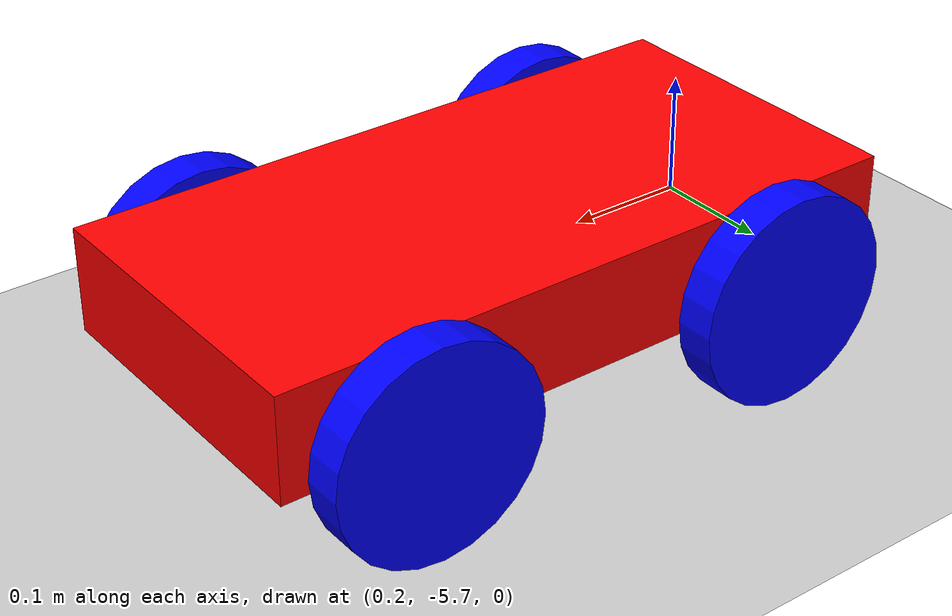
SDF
<sdf version="1.6">
 <world name="default">
  <model name="ground_plane">
   <static>1</static>
   <link name="link">
    <collision name="collision">
     <geometry><plane><normal>0 0 1</normal><size>100 100</size></plane></geometry>
     <surface><friction><ode><mu>100</mu><mu2>50</mu2></ode></friction></surface>
    </collision>
    <visual name="visual">
     <cast_shadows>0</cast_shadows>
     <geometry><plane><normal>0 0 1</normal><size>100 100</size></plane></geometry>
     <material>
      <script><uri>file://media/materials/scripts/gazebo.material</uri><name>Gazebo/Grey</name></script>
     </material>
    </visual>
   </link>
  </model>
  <model name="mybot_3">
   <link name="link_0">
    <pose>0 0 0.12 0 -0 0</pose>
    <inertial>
     <mass>1</mass>
     <inertia>
      <ixx>0.166667</ixx>
      <ixy>0</ixy>
      <ixz>0</ixz>
      <iyy>0.166667</iyy>
      <iyz>0</iyz>
      <izz>0.166667</izz>
     </inertia>
    </inertial>
    <visual name="visual">
     <geometry><box><size>0.5 0.25 0.08</size></box></geometry>
     <material>
      <lighting>1</lighting>
      <script><uri>file://media/materials/scripts/gazebo.material</uri><name>Gazebo/Grey</name></script>
      <shader type="pixel"><normal_map>__default__</normal_map></shader>
      <ambient>1 0 0 1</ambient>
      <diffuse>0.7 0.7 0.7 1</diffuse>
      <specular>0.01 0.01 0.01 1</specular>
      <emissive>0 0 0 1</emissive>
     </material>
    </visual>
    <collision name="collision">
     <geometry><box><size>0.5 0.25 0.08</size></box></geometry>
     <surface>
      <friction>
       <ode><mu>1</mu><mu2>1</mu2><fdir1>0 0 0</fdir1><slip1>0</slip1><slip2>0</slip2></ode>
       <torsional>
        <coefficient>1</coefficient>
        <patch_radius>0</patch_radius>
        <surface_radius>0</surface_radius>
        <use_patch_radius>1</use_patch_radius>
        <ode><slip>0</slip></ode>
       </torsional>
      </friction>
      <bounce><restitution_coefficient>0</restitution_coefficient><threshold>1e+06</threshold></bounce>
      <contact>
       <collide_without_contact>0</collide_without_contact>
       <collide_without_contact_bitmask>1</collide_without_contact_bitmask>
       <collide_bitmask>1</collide_bitmask>
       <ode>
        <soft_cfm>0</soft_cfm>
        <soft_erp>0.2</soft_erp>
        <kp>1e+13</kp>
        <kd>1</kd>
        <max_vel>0.01</max_vel>
        <min_depth>0</min_depth>
       </ode>
       <bullet>
        <split_impulse>1</split_impulse>
        <split_impulse_penetration_threshold>-0.01</split_impulse_penetration_threshold>
        <soft_cfm>0</soft_cfm>
        <soft_erp>0.2</soft_erp>
        <kp>1e+13</kp>
        <kd>1</kd>
       </bullet>
      </contact>
     </surface>
    </collision>
   </link>
   <link name="link_1_clone">
    <pose>0.15 0.14 0.09 1.571 -0 0</pose>
    <inertial>
     <mass>1</mass>
     <inertia><ixx>0.145833</ixx><ixy>0</ixy><ixz>0</ixz><iyy>0.145833</iyy><iyz>0</iyz><izz>0.125</izz></inertia>
    </inertial>
    <visual name="visual">
     <geometry><cylinder><radius>0.08</radius><length>0.03</length></cylinder></geometry>
     <material>
      <lighting>1</lighting>
      <script><uri>file://media/materials/scripts/gazebo.material</uri><name>Gazebo/Grey</name></script>
      <shader type="pixel"><normal_map>__default__</normal_map></shader>
      <ambient>0 0 1 1</ambient>
      <diffuse>0.7 0.7 0.7 1</diffuse>
      <specular>0.01 0.01 0.01 1</specular>
      <emissive>0 0 0 1</emissive>
     </material>
    </visual>
    <collision name="collision">
     <geometry><cylinder><radius>0.08</radius><length>0.03</length></cylinder></geometry>
     <surface>
      <friction>
       <ode><mu>1</mu><mu2>1</mu2><fdir1>0 0 0</fdir1><slip1>0</slip1><slip2>0</slip2></ode>
       <torsional>
        <coefficient>1</coefficient>
        <patch_radius>0</patch_radius>
        <surface_radius>0</surface_radius>
        <use_patch_radius>1</use_patch_radius>
        <ode><slip>0</slip></ode>
       </torsional>
      </friction>
      <bounce><restitution_coefficient>0</restitution_coefficient><threshold>1e+06</threshold></bounce>
      <contact>
       <collide_without_contact>0</collide_without_contact>
       <collide_without_contact_bitmask>1</collide_without_contact_bitmask>
       <collide_bitmask>1</collide_bitmask>
       <ode>
        <soft_cfm>0</soft_cfm>
        <soft_erp>0.2</soft_erp>
        <kp>1e+13</kp>
        <kd>1</kd>
        <max_vel>0.01</max_vel>
        <min_depth>0</min_depth>
       </ode>
       <bullet>
        <split_impulse>1</split_impulse>
        <split_impulse_penetration_threshold>-0.01</split_impulse_penetration_threshold>
        <soft_cfm>0</soft_cfm>
        <soft_erp>0.2</soft_erp>
        <kp>1e+13</kp>
        <kd>1</kd>
       </bullet>
      </contact>
     </surface>
    </collision>
   </link>
   <link name="link_1_clone_clone">
    <pose>-0.15 0.14 0.09 1.571 -0 0</pose>
    <inertial>
     <mass>1</mass>
     <inertia><ixx>0.145833</ixx><ixy>0</ixy><ixz>0</ixz><iyy>0.145833</iyy><iyz>0</iyz><izz>0.125</izz></inertia>
    </inertial>
    <visual name="visual">
     <geometry><cylinder><radius>0.08</radius><length>0.03</length></cylinder></geometry>
     <material>
      <lighting>1</lighting>
      <script><uri>file://media/materials/scripts/gazebo.material</uri><name>Gazebo/Grey</name></script>
      <shader type="pixel"><normal_map>__default__</normal_map></shader>
      <ambient>0 0 1 1</ambient>
      <diffuse>0.7 0.7 0.7 1</diffuse>
      <specular>0.01 0.01 0.01 1</specular>
      <emissive>0 0 0 1</emissive>
     </material>
    </visual>
    <collision name="collision">
     <geometry><cylinder><radius>0.08</radius><length>0.03</length></cylinder></geometry>
     <surface>
      <friction>
       <ode><mu>1</mu><mu2>1</mu2><fdir1>0 0 0</fdir1><slip1>0</slip1><slip2>0</slip2></ode>
       <torsional>
        <coefficient>1</coefficient>
        <patch_radius>0</patch_radius>
        <surface_radius>0</surface_radius>
        <use_patch_radius>1</use_patch_radius>
        <ode><slip>0</slip></ode>
       </torsional>
      </friction>
      <bounce><restitution_coefficient>0</restitution_coefficient><threshold>1e+06</threshold></bounce>
      <contact>
       <collide_without_contact>0</collide_without_contact>
       <collide_without_contact_bitmask>1</collide_without_contact_bitmask>
       <collide_bitmask>1</collide_bitmask>
       <ode>
        <soft_cfm>0</soft_cfm>
        <soft_erp>0.2</soft_erp>
        <kp>1e+13</kp>
        <kd>1</kd>
        <max_vel>0.01</max_vel>
        <min_depth>0</min_depth>
       </ode>
       <bullet>
        <split_impulse>1</split_impulse>
        <split_impulse_penetration_threshold>-0.01</split_impulse_penetration_threshold>
        <soft_cfm>0</soft_cfm>
        <soft_erp>0.2</soft_erp>
        <kp>1e+13</kp>
        <kd>1</kd>
       </bullet>
      </contact>
     </surface>
    </collision>
   </link>
   <link name="link_1_clone_clone_0">
    <pose>-0.15 -0.14 0.09 1.571 -0 0</pose>
    <inertial>
     <mass>1</mass>
     <inertia><ixx>0.145833</ixx><ixy>0</ixy><ixz>0</ixz><iyy>0.145833</iyy><iyz>0</iyz><izz>0.125</izz></inertia>
    </inertial>
    <visual name="visual">
     <geometry><cylinder><radius>0.08</radius><length>0.03</length></cylinder></geometry>
     <material>
      <lighting>1</lighting>
      <script><uri>file://media/materials/scripts/gazebo.material</uri><name>Gazebo/Grey</name></script>
      <shader type="pixel"><normal_map>__default__</normal_map></shader>
      <ambient>0 0 1 1</ambient>
      <diffuse>0.7 0.7 0.7 1</diffuse>
      <specular>0.01 0.01 0.01 1</specular>
      <emissive>0 0 0 1</emissive>
     </material>
    </visual>
    <collision name="collision">
     <geometry><cylinder><radius>0.08</radius><length>0.03</length></cylinder></geometry>
     <surface>
      <friction>
       <ode><mu>1</mu><mu2>1</mu2><fdir1>0 0 0</fdir1><slip1>0</slip1><slip2>0</slip2></ode>
       <torsional>
        <coefficient>1</coefficient>
        <patch_radius>0</patch_radius>
        <surface_radius>0</surface_radius>
        <use_patch_radius>1</use_patch_radius>
        <ode><slip>0</slip></ode>
       </torsional>
      </friction>
      <bounce><restitution_coefficient>0</restitution_coefficient><threshold>1e+06</threshold></bounce>
      <contact>
       <collide_without_contact>0</collide_without_contact>
       <collide_without_contact_bitmask>1</collide_without_contact_bitmask>
       <collide_bitmask>1</collide_bitmask>
       <ode>
        <soft_cfm>0</soft_cfm>
        <soft_erp>0.2</soft_erp>
        <kp>1e+13</kp>
        <kd>1</kd>
        <max_vel>0.01</max_vel>
        <min_depth>0</min_depth>
       </ode>
       <bullet>
        <split_impulse>1</split_impulse>
        <split_impulse_penetration_threshold>-0.01</split_impulse_penetration_threshold>
        <soft_cfm>0</soft_cfm>
        <soft_erp>0.2</soft_erp>
        <kp>1e+13</kp>
        <kd>1</kd>
       </bullet>
      </contact>
     </surface>
    </collision>
   </link>
   <link name="link_1_clone_clone_1">
    <pose>0.15 -0.14 0.09 1.571 -0 0</pose>
    <inertial>
     <mass>1</mass>
     <inertia><ixx>0.145833</ixx><ixy>0</ixy><ixz>0</ixz><iyy>0.145833</iyy><iyz>0</iyz><izz>0.125</izz></inertia>
    </inertial>
    <visual name="visual">
     <geometry><cylinder><radius>0.08</radius><length>0.03</length></cylinder></geometry>
     <material>
      <lighting>1</lighting>
      <script><uri>file://media/materials/scripts/gazebo.material</uri><name>Gazebo/Grey</name></script>
      <shader type="pixel"><normal_map>__default__</normal_map></shader>
      <ambient>0 0 1 1</ambient>
      <diffuse>0.7 0.7 0.7 1</diffuse>
      <specular>0.01 0.01 0.01 1</specular>
      <emissive>0 0 0 1</emissive>
     </material>
    </visual>
    <collision name="collision">
     <geometry><cylinder><radius>0.08</radius><length>0.03</length></cylinder></geometry>
     <surface>
      <friction>
       <ode><mu>1</mu><mu2>1</mu2><fdir1>0 0 0</fdir1><slip1>0</slip1><slip2>0</slip2></ode>
       <torsional>
        <coefficient>1</coefficient>
        <patch_radius>0</patch_radius>
        <surface_radius>0</surface_radius>
        <use_patch_radius>1</use_patch_radius>
        <ode><slip>0</slip></ode>
       </torsional>
      </friction>
      <bounce><restitution_coefficient>0</restitution_coefficient><threshold>1e+06</threshold></bounce>
      <contact>
       <collide_without_contact>0</collide_without_contact>
       <collide_without_contact_bitmask>1</collide_without_contact_bitmask>
       <collide_bitmask>1</collide_bitmask>
       <ode>
        <soft_cfm>0</soft_cfm>
        <soft_erp>0.2</soft_erp>
        <kp>1e+13</kp>
        <kd>1</kd>
        <max_vel>0.01</max_vel>
        <min_depth>0</min_depth>
       </ode>
       <bullet>
        <split_impulse>1</split_impulse>
        <split_impulse_penetration_threshold>-0.01</split_impulse_penetration_threshold>
        <soft_cfm>0</soft_cfm>
        <soft_erp>0.2</soft_erp>
        <kp>1e+13</kp>
        <kd>1</kd>
       </bullet>
      </contact>
     </surface>
    </collision>
   </link>
   <joint name="link_0_JOINT_0" type="revolute">
    <parent>link_0</parent>
    <child>link_1_clone</child>
    <axis>
     <xyz>0 0 1</xyz>
     <use_parent_model_frame>0</use_parent_model_frame>
     <limit>
      <lower>-1.79769e+308</lower>
      <upper>1.79769e+308</upper>
      <effort>-1</effort>
      <velocity>-1</velocity>
     </limit>
     <dynamics>
      <spring_reference>0</spring_reference>
      <spring_stiffness>0</spring_stiffness>
      <damping>0</damping>
      <friction>0</friction>
     </dynamics>
    </axis>
    <physics>
     <ode><limit><cfm>0</cfm><erp>0.2</erp></limit><suspension><cfm>0</cfm><erp>0.2</erp></suspension></ode>
    </physics>
   </joint>
   <joint name="link_0_JOINT_1" type="revolute">
    <parent>link_0</parent>
    <child>link_1_clone_clone</child>
    <axis>
     <xyz>0 0 1</xyz>
     <use_parent_model_frame>0</use_parent_model_frame>
     <limit>
      <lower>-1.79769e+308</lower>
      <upper>1.79769e+308</upper>
      <effort>-1</effort>
      <velocity>-1</velocity>
     </limit>
     <dynamics>
      <spring_reference>0</spring_reference>
      <spring_stiffness>0</spring_stiffness>
      <damping>0</damping>
      <friction>0</friction>
     </dynamics>
    </axis>
    <physics>
     <ode><limit><cfm>0</cfm><erp>0.2</erp></limit><suspension><cfm>0</cfm><erp>0.2</erp></suspension></ode>
    </physics>
   </joint>
   <joint name="link_0_JOINT_2" type="revolute">
    <parent>link_0</parent>
    <child>link_1_clone_clone_1</child>
    <axis>
     <xyz>0 0 1</xyz>
     <use_parent_model_frame>0</use_parent_model_frame>
     <limit>
      <lower>-1.79769e+308</lower>
      <upper>1.79769e+308</upper>
      <effort>-1</effort>
      <velocity>-1</velocity>
     </limit>
     <dynamics>
      <spring_reference>0</spring_reference>
      <spring_stiffness>0</spring_stiffness>
      <damping>0</damping>
      <friction>0</friction>
     </dynamics>
    </axis>
    <physics>
     <ode><limit><cfm>0</cfm><erp>0.2</erp></limit><suspension><cfm>0</cfm><erp>0.2</erp></suspension></ode>
    </physics>
   </joint>
   <joint name="link_0_JOINT_3" type="revolute">
    <parent>link_0</parent>
    <child>link_1_clone_clone_0</child>
    <axis>
     <xyz>0 0 1</xyz>
     <use_parent_model_frame>0</use_parent_model_frame>
     <limit>
      <lower>-1.79769e+308</lower>
      <upper>1.79769e+308</upper>
      <effort>-1</effort>
      <velocity>-1</velocity>
     </limit>
     <dynamics>
      <spring_reference>0</spring_reference>
      <spring_stiffness>0</spring_stiffness>
      <damping>0</damping>
      <friction>0</friction>
     </dynamics>
    </axis>
    <physics>
     <ode><limit><cfm>0</cfm><erp>0.2</erp></limit><suspension><cfm>0</cfm><erp>0.2</erp></suspension></ode>
    </physics>
   </joint>
   <static>0</static>
   <pose>0.493787 -5.56869 -0.009997 0 -0 0.000223</pose>
  </model>
 </world>
</sdf>
